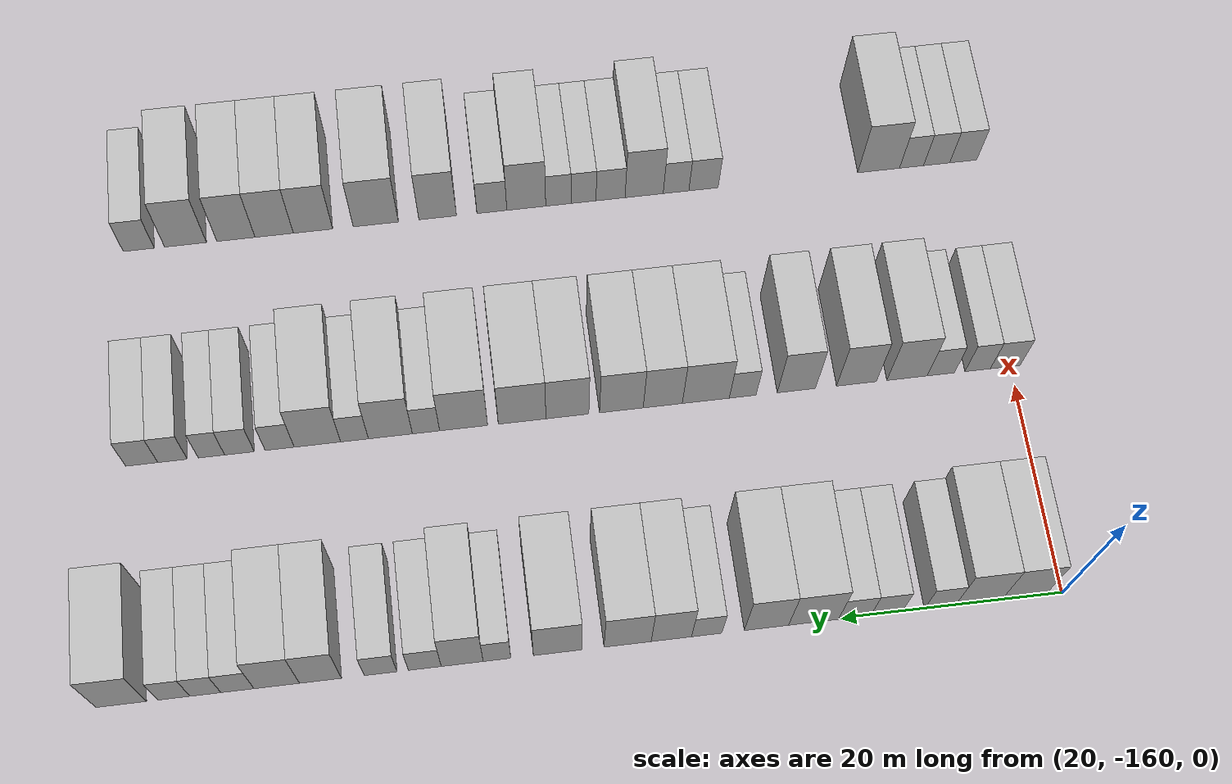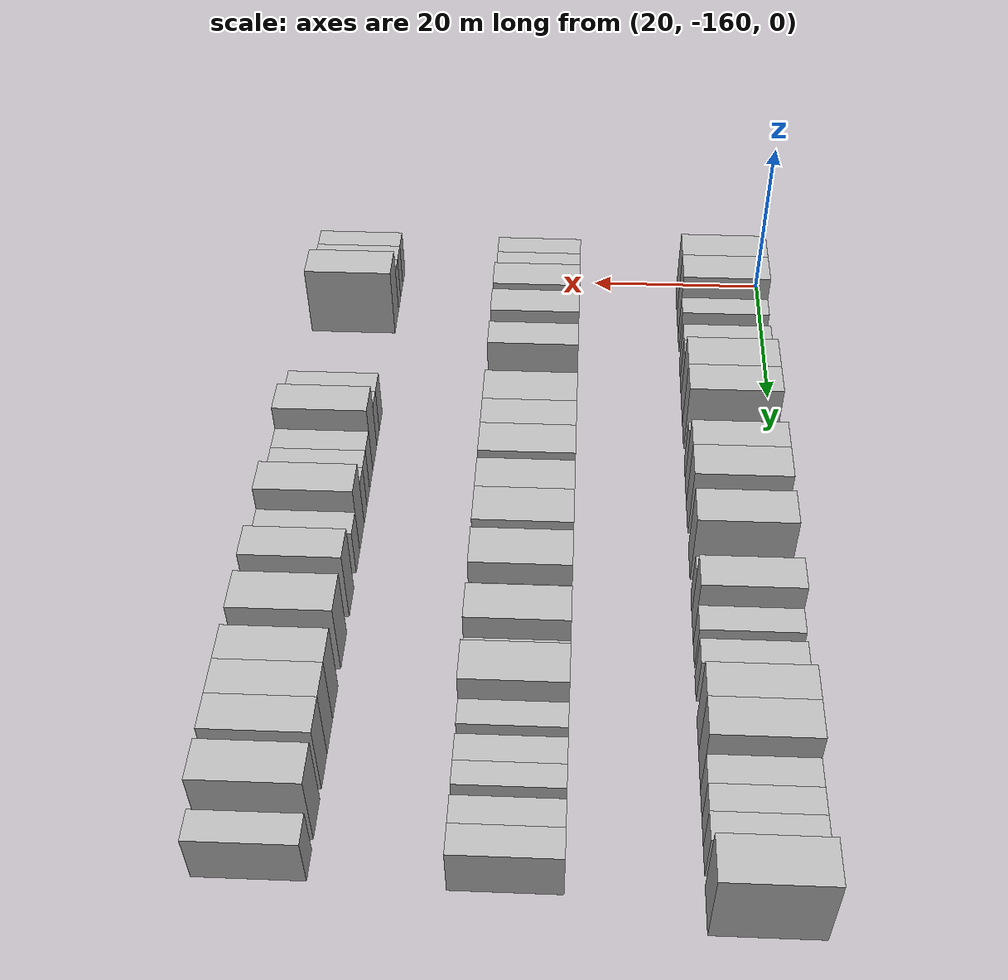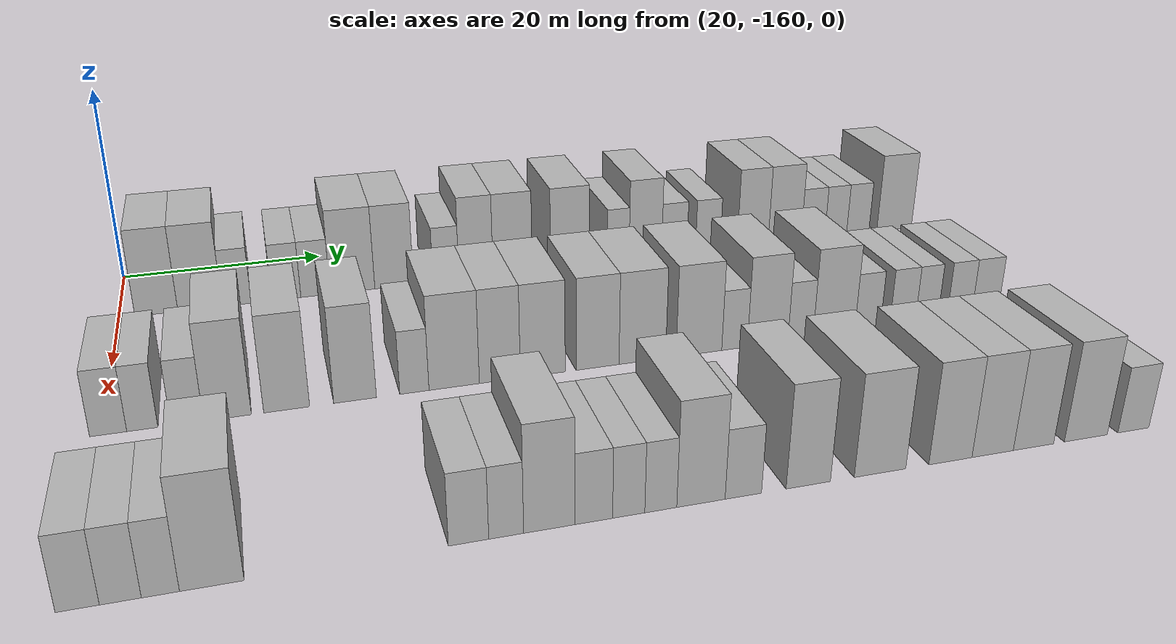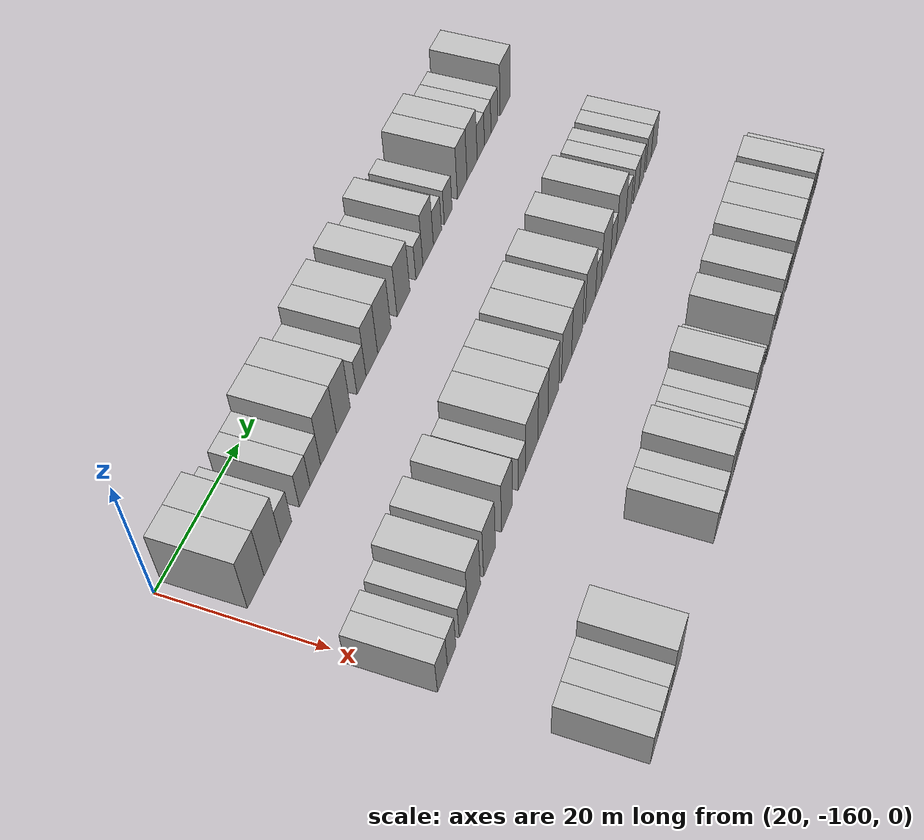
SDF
<sdf version="1.6">
 <world name="default">
  <model name="building_18">
   <static>1</static>
   <pose>25.0000 -156.4825 0 0.000000 0.000000 0.000000</pose>
   <link name="link">
    <pose>0 0 4.50 0 0 0</pose>
    <collision name="collision"><geometry><box><size>10.0000 4.0112 9.0000</size></box></geometry></collision>
    <visual name="visual">
     <cast_shadows>0</cast_shadows>
     <geometry><box><size>10.0000 4.0112 9.0000</size></box></geometry>
     <material>
      <script>
       <uri>model://HANNAS_wall/materials/scripts</uri>
       <uri>model://HANNAS_wall/materials/textures</uri>
       <name>vrc/HANNAS_wall</name>
      </script>
     </material>
    </visual>
   </link>
  </model>
  <model name="building_19">
   <static>1</static>
   <pose>25.0000 -152.3724 0 0.000000 0.000000 0.000000</pose>
   <link name="link">
    <pose>0 0 4.50 0 0 0</pose>
    <collision name="collision"><geometry><box><size>10.0000 4.2090 9.0000</size></box></geometry></collision>
    <visual name="visual">
     <cast_shadows>0</cast_shadows>
     <geometry><box><size>10.0000 4.2090 9.0000</size></box></geometry>
     <material>
      <script>
       <uri>model://HANNAS_wall/materials/scripts</uri>
       <uri>model://HANNAS_wall/materials/textures</uri>
       <name>vrc/HANNAS_wall</name>
      </script>
     </material>
    </visual>
   </link>
  </model>
  <model name="building_20">
   <static>1</static>
   <pose>25.0000 -148.8655 0 0.000000 0.000000 0.000000</pose>
   <link name="link">
    <pose>0 0 3.00 0 0 0</pose>
    <collision name="collision"><geometry><box><size>10.0000 2.8047 6.0000</size></box></geometry></collision>
    <visual name="visual">
     <cast_shadows>0</cast_shadows>
     <geometry><box><size>10.0000 2.8047 6.0000</size></box></geometry>
     <material>
      <script>
       <uri>model://HANNAS_wall/materials/scripts</uri>
       <uri>model://HANNAS_wall/materials/textures</uri>
       <name>vrc/HANNAS_wall</name>
      </script>
     </material>
    </visual>
   </link>
  </model>
  <model name="building_21">
   <static>1</static>
   <pose>25.0000 -144.0431 0 0.000000 0.000000 0.000000</pose>
   <link name="link">
    <pose>0 0 3.00 0 0 0</pose>
    <collision name="collision"><geometry><box><size>10.0000 2.8402 6.0000</size></box></geometry></collision>
    <visual name="visual">
     <cast_shadows>0</cast_shadows>
     <geometry><box><size>10.0000 2.8402 6.0000</size></box></geometry>
     <material>
      <script>
       <uri>model://HANNAS_wall/materials/scripts</uri>
       <uri>model://HANNAS_wall/materials/textures</uri>
       <name>vrc/HANNAS_wall</name>
      </script>
     </material>
    </visual>
   </link>
  </model>
  <model name="building_22">
   <static>1</static>
   <pose>25.0000 -141.1653 0 0.000000 0.000000 0.000000</pose>
   <link name="link">
    <pose>0 0 3.00 0 0 0</pose>
    <collision name="collision"><geometry><box><size>10.0000 2.9154 6.0000</size></box></geometry></collision>
    <visual name="visual">
     <cast_shadows>0</cast_shadows>
     <geometry><box><size>10.0000 2.9154 6.0000</size></box></geometry>
     <material>
      <script>
       <uri>model://HANNAS_wall/materials/scripts</uri>
       <uri>model://HANNAS_wall/materials/textures</uri>
       <name>vrc/HANNAS_wall</name>
      </script>
     </material>
    </visual>
   </link>
  </model>
  <model name="building_23">
   <static>1</static>
   <pose>25.0000 -137.4626 0 0.000000 0.000000 0.000000</pose>
   <link name="link">
    <pose>0 0 4.50 0 0 0</pose>
    <collision name="collision"><geometry><box><size>10.0000 4.4899 9.0000</size></box></geometry></collision>
    <visual name="visual">
     <cast_shadows>0</cast_shadows>
     <geometry><box><size>10.0000 4.4899 9.0000</size></box></geometry>
     <material>
      <script>
       <uri>model://HANNAS_wall/materials/scripts</uri>
       <uri>model://HANNAS_wall/materials/textures</uri>
       <name>vrc/HANNAS_wall</name>
      </script>
     </material>
    </visual>
   </link>
  </model>
  <model name="building_24">
   <static>1</static>
   <pose>25.0000 -133.2311 0 0.000000 0.000000 0.000000</pose>
   <link name="link">
    <pose>0 0 4.50 0 0 0</pose>
    <collision name="collision"><geometry><box><size>10.0000 3.9731 9.0000</size></box></geometry></collision>
    <visual name="visual">
     <cast_shadows>0</cast_shadows>
     <geometry><box><size>10.0000 3.9731 9.0000</size></box></geometry>
     <material>
      <script>
       <uri>model://HANNAS_wall/materials/scripts</uri>
       <uri>model://HANNAS_wall/materials/textures</uri>
       <name>vrc/HANNAS_wall</name>
      </script>
     </material>
    </visual>
   </link>
  </model>
  <model name="building_25">
   <static>1</static>
   <pose>25.0000 -127.8834 0 0.000000 0.000000 0.000000</pose>
   <link name="link">
    <pose>0 0 3.00 0 0 0</pose>
    <collision name="collision"><geometry><box><size>10.0000 2.7222 6.0000</size></box></geometry></collision>
    <visual name="visual">
     <cast_shadows>0</cast_shadows>
     <geometry><box><size>10.0000 2.7222 6.0000</size></box></geometry>
     <material>
      <script>
       <uri>model://HANNAS_wall/materials/scripts</uri>
       <uri>model://HANNAS_wall/materials/textures</uri>
       <name>vrc/HANNAS_wall</name>
      </script>
     </material>
    </visual>
   </link>
  </model>
  <model name="building_26">
   <static>1</static>
   <pose>25.0000 -124.7177 0 0.000000 0.000000 0.000000</pose>
   <link name="link">
    <pose>0 0 4.50 0 0 0</pose>
    <collision name="collision"><geometry><box><size>10.0000 3.6093 9.0000</size></box></geometry></collision>
    <visual name="visual">
     <cast_shadows>0</cast_shadows>
     <geometry><box><size>10.0000 3.6093 9.0000</size></box></geometry>
     <material>
      <script>
       <uri>model://HANNAS_wall/materials/scripts</uri>
       <uri>model://HANNAS_wall/materials/textures</uri>
       <name>vrc/HANNAS_wall</name>
      </script>
     </material>
    </visual>
   </link>
  </model>
  <model name="building_27">
   <static>1</static>
   <pose>25.0000 -120.8122 0 0.000000 0.000000 0.000000</pose>
   <link name="link">
    <pose>0 0 4.50 0 0 0</pose>
    <collision name="collision"><geometry><box><size>10.0000 4.2016 9.0000</size></box></geometry></collision>
    <visual name="visual">
     <cast_shadows>0</cast_shadows>
     <geometry><box><size>10.0000 4.2016 9.0000</size></box></geometry>
     <material>
      <script>
       <uri>model://HANNAS_wall/materials/scripts</uri>
       <uri>model://HANNAS_wall/materials/textures</uri>
       <name>vrc/HANNAS_wall</name>
      </script>
     </material>
    </visual>
   </link>
  </model>
  <model name="building_28">
   <static>1</static>
   <pose>25.0000 -114.5710 0 0.000000 0.000000 0.000000</pose>
   <link name="link">
    <pose>0 0 4.50 0 0 0</pose>
    <collision name="collision"><geometry><box><size>10.0000 4.2808 9.0000</size></box></geometry></collision>
    <visual name="visual">
     <cast_shadows>0</cast_shadows>
     <geometry><box><size>10.0000 4.2808 9.0000</size></box></geometry>
     <material>
      <script>
       <uri>model://HANNAS_wall/materials/scripts</uri>
       <uri>model://HANNAS_wall/materials/textures</uri>
       <name>vrc/HANNAS_wall</name>
      </script>
     </material>
    </visual>
   </link>
  </model>
  <model name="building_29">
   <static>1</static>
   <pose>25.0000 -109.2100 0 0.000000 0.000000 0.000000</pose>
   <link name="link">
    <pose>0 0 3.00 0 0 0</pose>
    <collision name="collision"><geometry><box><size>10.0000 2.4412 6.0000</size></box></geometry></collision>
    <visual name="visual">
     <cast_shadows>0</cast_shadows>
     <geometry><box><size>10.0000 2.4412 6.0000</size></box></geometry>
     <material>
      <script>
       <uri>model://HANNAS_wall/materials/scripts</uri>
       <uri>model://HANNAS_wall/materials/textures</uri>
       <name>vrc/HANNAS_wall</name>
      </script>
     </material>
    </visual>
   </link>
  </model>
  <model name="building_30">
   <static>1</static>
   <pose>25.0000 -106.1370 0 0.000000 0.000000 0.000000</pose>
   <link name="link">
    <pose>0 0 4.50 0 0 0</pose>
    <collision name="collision"><geometry><box><size>10.0000 3.7049 9.0000</size></box></geometry></collision>
    <visual name="visual">
     <cast_shadows>0</cast_shadows>
     <geometry><box><size>10.0000 3.7049 9.0000</size></box></geometry>
     <material>
      <script>
       <uri>model://HANNAS_wall/materials/scripts</uri>
       <uri>model://HANNAS_wall/materials/textures</uri>
       <name>vrc/HANNAS_wall</name>
      </script>
     </material>
    </visual>
   </link>
  </model>
  <model name="building_31">
   <static>1</static>
   <pose>25.0000 -102.8330 0 0.000000 0.000000 0.000000</pose>
   <link name="link">
    <pose>0 0 3.00 0 0 0</pose>
    <collision name="collision"><geometry><box><size>10.0000 2.9032 6.0000</size></box></geometry></collision>
    <visual name="visual">
     <cast_shadows>0</cast_shadows>
     <geometry><box><size>10.0000 2.9032 6.0000</size></box></geometry>
     <material>
      <script>
       <uri>model://HANNAS_wall/materials/scripts</uri>
       <uri>model://HANNAS_wall/materials/textures</uri>
       <name>vrc/HANNAS_wall</name>
      </script>
     </material>
    </visual>
   </link>
  </model>
  <model name="building_32">
   <static>1</static>
   <pose>25.0000 -98.9385 0 0.000000 0.000000 0.000000</pose>
   <link name="link">
    <pose>0 0 3.00 0 0 0</pose>
    <collision name="collision"><geometry><box><size>10.0000 2.8858 6.0000</size></box></geometry></collision>
    <visual name="visual">
     <cast_shadows>0</cast_shadows>
     <geometry><box><size>10.0000 2.8858 6.0000</size></box></geometry>
     <material>
      <script>
       <uri>model://HANNAS_wall/materials/scripts</uri>
       <uri>model://HANNAS_wall/materials/textures</uri>
       <name>vrc/HANNAS_wall</name>
      </script>
     </material>
    </visual>
   </link>
  </model>
  <model name="building_33">
   <static>1</static>
   <pose>25.0000 -93.6517 0 0.000000 0.000000 0.000000</pose>
   <link name="link">
    <pose>0 0 4.50 0 0 0</pose>
    <collision name="collision"><geometry><box><size>10.0000 3.6877 9.0000</size></box></geometry></collision>
    <visual name="visual">
     <cast_shadows>0</cast_shadows>
     <geometry><box><size>10.0000 3.6877 9.0000</size></box></geometry>
     <material>
      <script>
       <uri>model://HANNAS_wall/materials/scripts</uri>
       <uri>model://HANNAS_wall/materials/textures</uri>
       <name>vrc/HANNAS_wall</name>
      </script>
     </material>
    </visual>
   </link>
  </model>
  <model name="building_34">
   <static>1</static>
   <pose>25.0000 -89.8143 0 0.000000 0.000000 0.000000</pose>
   <link name="link">
    <pose>0 0 4.50 0 0 0</pose>
    <collision name="collision"><geometry><box><size>10.0000 3.9870 9.0000</size></box></geometry></collision>
    <visual name="visual">
     <cast_shadows>0</cast_shadows>
     <geometry><box><size>10.0000 3.9870 9.0000</size></box></geometry>
     <material>
      <script>
       <uri>model://HANNAS_wall/materials/scripts</uri>
       <uri>model://HANNAS_wall/materials/textures</uri>
       <name>vrc/HANNAS_wall</name>
      </script>
     </material>
    </visual>
   </link>
  </model>
  <model name="building_35">
   <static>1</static>
   <pose>25.0000 -86.3713 0 0.000000 0.000000 0.000000</pose>
   <link name="link">
    <pose>0 0 3.00 0 0 0</pose>
    <collision name="collision"><geometry><box><size>10.0000 2.8990 6.0000</size></box></geometry></collision>
    <visual name="visual">
     <cast_shadows>0</cast_shadows>
     <geometry><box><size>10.0000 2.8990 6.0000</size></box></geometry>
     <material>
      <script>
       <uri>model://HANNAS_wall/materials/scripts</uri>
       <uri>model://HANNAS_wall/materials/textures</uri>
       <name>vrc/HANNAS_wall</name>
      </script>
     </material>
    </visual>
   </link>
  </model>
  <model name="building_36">
   <static>1</static>
   <pose>25.0000 -83.5742 0 0.000000 0.000000 0.000000</pose>
   <link name="link">
    <pose>0 0 3.00 0 0 0</pose>
    <collision name="collision"><geometry><box><size>10.0000 2.6952 6.0000</size></box></geometry></collision>
    <visual name="visual">
     <cast_shadows>0</cast_shadows>
     <geometry><box><size>10.0000 2.6952 6.0000</size></box></geometry>
     <material>
      <script>
       <uri>model://HANNAS_wall/materials/scripts</uri>
       <uri>model://HANNAS_wall/materials/textures</uri>
       <name>vrc/HANNAS_wall</name>
      </script>
     </material>
    </visual>
   </link>
  </model>
  <model name="building_37">
   <static>1</static>
   <pose>25.0000 -80.8353 0 0.000000 0.000000 0.000000</pose>
   <link name="link">
    <pose>0 0 3.00 0 0 0</pose>
    <collision name="collision"><geometry><box><size>10.0000 2.7825 6.0000</size></box></geometry></collision>
    <visual name="visual">
     <cast_shadows>0</cast_shadows>
     <geometry><box><size>10.0000 2.7825 6.0000</size></box></geometry>
     <material>
      <script>
       <uri>model://HANNAS_wall/materials/scripts</uri>
       <uri>model://HANNAS_wall/materials/textures</uri>
       <name>vrc/HANNAS_wall</name>
      </script>
     </material>
    </visual>
   </link>
  </model>
  <model name="building_38">
   <static>1</static>
   <pose>25.0000 -76.2479 0 0.000000 0.000000 0.000000</pose>
   <link name="link">
    <pose>0 0 4.50 0 0 0</pose>
    <collision name="collision"><geometry><box><size>10.0000 4.3922 9.0000</size></box></geometry></collision>
    <visual name="visual">
     <cast_shadows>0</cast_shadows>
     <geometry><box><size>10.0000 4.3922 9.0000</size></box></geometry>
     <material>
      <script>
       <uri>model://HANNAS_wall/materials/scripts</uri>
       <uri>model://HANNAS_wall/materials/textures</uri>
       <name>vrc/HANNAS_wall</name>
      </script>
     </material>
    </visual>
   </link>
  </model>
  <model name="building_144">
   <static>1</static>
   <pose>47.0000 -159.5374 0 0.000000 0.000000 0.000000</pose>
   <link name="link">
    <pose>0 0 3.00 0 0 0</pose>
    <collision name="collision"><geometry><box><size>10.0000 2.8559 6.0000</size></box></geometry></collision>
    <visual name="visual">
     <cast_shadows>0</cast_shadows>
     <geometry><box><size>10.0000 2.8559 6.0000</size></box></geometry>
     <material>
      <script>
       <uri>model://HANNAS_wall/materials/scripts</uri>
       <uri>model://HANNAS_wall/materials/textures</uri>
       <name>vrc/HANNAS_wall</name>
      </script>
     </material>
    </visual>
   </link>
  </model>
  <model name="building_145">
   <static>1</static>
   <pose>47.0000 -156.8968 0 0.000000 0.000000 0.000000</pose>
   <link name="link">
    <pose>0 0 3.00 0 0 0</pose>
    <collision name="collision"><geometry><box><size>10.0000 2.4253 6.0000</size></box></geometry></collision>
    <visual name="visual">
     <cast_shadows>0</cast_shadows>
     <geometry><box><size>10.0000 2.4253 6.0000</size></box></geometry>
     <material>
      <script>
       <uri>model://HANNAS_wall/materials/scripts</uri>
       <uri>model://HANNAS_wall/materials/textures</uri>
       <name>vrc/HANNAS_wall</name>
      </script>
     </material>
    </visual>
   </link>
  </model>
  <model name="building_146">
   <static>1</static>
   <pose>47.0000 -153.3879 0 0.000000 0.000000 0.000000</pose>
   <link name="link">
    <pose>0 0 3.00 0 0 0</pose>
    <collision name="collision"><geometry><box><size>10.0000 2.5924 6.0000</size></box></geometry></collision>
    <visual name="visual">
     <cast_shadows>0</cast_shadows>
     <geometry><box><size>10.0000 2.5924 6.0000</size></box></geometry>
     <material>
      <script>
       <uri>model://HANNAS_wall/materials/scripts</uri>
       <uri>model://HANNAS_wall/materials/textures</uri>
       <name>vrc/HANNAS_wall</name>
      </script>
     </material>
    </visual>
   </link>
  </model>
  <model name="building_147">
   <static>1</static>
   <pose>47.0000 -150.1655 0 0.000000 0.000000 0.000000</pose>
   <link name="link">
    <pose>0 0 4.50 0 0 0</pose>
    <collision name="collision"><geometry><box><size>10.0000 3.8525 9.0000</size></box></geometry></collision>
    <visual name="visual">
     <cast_shadows>0</cast_shadows>
     <geometry><box><size>10.0000 3.8525 9.0000</size></box></geometry>
     <material>
      <script>
       <uri>model://HANNAS_wall/materials/scripts</uri>
       <uri>model://HANNAS_wall/materials/textures</uri>
       <name>vrc/HANNAS_wall</name>
      </script>
     </material>
    </visual>
   </link>
  </model>
  <model name="building_148">
   <static>1</static>
   <pose>47.0000 -145.3479 0 0.000000 0.000000 0.000000</pose>
   <link name="link">
    <pose>0 0 4.50 0 0 0</pose>
    <collision name="collision"><geometry><box><size>10.0000 3.7826 9.0000</size></box></geometry></collision>
    <visual name="visual">
     <cast_shadows>0</cast_shadows>
     <geometry><box><size>10.0000 3.7826 9.0000</size></box></geometry>
     <material>
      <script>
       <uri>model://HANNAS_wall/materials/scripts</uri>
       <uri>model://HANNAS_wall/materials/textures</uri>
       <name>vrc/HANNAS_wall</name>
      </script>
     </material>
    </visual>
   </link>
  </model>
  <model name="building_149">
   <static>1</static>
   <pose>47.0000 -139.6475 0 0.000000 0.000000 0.000000</pose>
   <link name="link">
    <pose>0 0 4.50 0 0 0</pose>
    <collision name="collision"><geometry><box><size>10.0000 3.6181 9.0000</size></box></geometry></collision>
    <visual name="visual">
     <cast_shadows>0</cast_shadows>
     <geometry><box><size>10.0000 3.6181 9.0000</size></box></geometry>
     <material>
      <script>
       <uri>model://HANNAS_wall/materials/scripts</uri>
       <uri>model://HANNAS_wall/materials/textures</uri>
       <name>vrc/HANNAS_wall</name>
      </script>
     </material>
    </visual>
   </link>
  </model>
  <model name="building_150">
   <static>1</static>
   <pose>47.0000 -134.5729 0 0.000000 0.000000 0.000000</pose>
   <link name="link">
    <pose>0 0 3.00 0 0 0</pose>
    <collision name="collision"><geometry><box><size>10.0000 2.5311 6.0000</size></box></geometry></collision>
    <visual name="visual">
     <cast_shadows>0</cast_shadows>
     <geometry><box><size>10.0000 2.5311 6.0000</size></box></geometry>
     <material>
      <script>
       <uri>model://HANNAS_wall/materials/scripts</uri>
       <uri>model://HANNAS_wall/materials/textures</uri>
       <name>vrc/HANNAS_wall</name>
      </script>
     </material>
    </visual>
   </link>
  </model>
  <model name="building_151">
   <static>1</static>
   <pose>47.0000 -131.0908 0 0.000000 0.000000 0.000000</pose>
   <link name="link">
    <pose>0 0 4.50 0 0 0</pose>
    <collision name="collision"><geometry><box><size>10.0000 4.4332 9.0000</size></box></geometry></collision>
    <visual name="visual">
     <cast_shadows>0</cast_shadows>
     <geometry><box><size>10.0000 4.4332 9.0000</size></box></geometry>
     <material>
      <script>
       <uri>model://HANNAS_wall/materials/scripts</uri>
       <uri>model://HANNAS_wall/materials/textures</uri>
       <name>vrc/HANNAS_wall</name>
      </script>
     </material>
    </visual>
   </link>
  </model>
  <model name="building_152">
   <static>1</static>
   <pose>47.0000 -127.0386 0 0.000000 0.000000 0.000000</pose>
   <link name="link">
    <pose>0 0 4.50 0 0 0</pose>
    <collision name="collision"><geometry><box><size>10.0000 3.6711 9.0000</size></box></geometry></collision>
    <visual name="visual">
     <cast_shadows>0</cast_shadows>
     <geometry><box><size>10.0000 3.6711 9.0000</size></box></geometry>
     <material>
      <script>
       <uri>model://HANNAS_wall/materials/scripts</uri>
       <uri>model://HANNAS_wall/materials/textures</uri>
       <name>vrc/HANNAS_wall</name>
      </script>
     </material>
    </visual>
   </link>
  </model>
  <model name="building_153">
   <static>1</static>
   <pose>47.0000 -123.1523 0 0.000000 0.000000 0.000000</pose>
   <link name="link">
    <pose>0 0 4.50 0 0 0</pose>
    <collision name="collision"><geometry><box><size>10.0000 4.1014 9.0000</size></box></geometry></collision>
    <visual name="visual">
     <cast_shadows>0</cast_shadows>
     <geometry><box><size>10.0000 4.1014 9.0000</size></box></geometry>
     <material>
      <script>
       <uri>model://HANNAS_wall/materials/scripts</uri>
       <uri>model://HANNAS_wall/materials/textures</uri>
       <name>vrc/HANNAS_wall</name>
      </script>
     </material>
    </visual>
   </link>
  </model>
  <model name="building_154">
   <static>1</static>
   <pose>47.0000 -118.0938 0 0.000000 0.000000 0.000000</pose>
   <link name="link">
    <pose>0 0 4.50 0 0 0</pose>
    <collision name="collision"><geometry><box><size>10.0000 4.0157 9.0000</size></box></geometry></collision>
    <visual name="visual">
     <cast_shadows>0</cast_shadows>
     <geometry><box><size>10.0000 4.0157 9.0000</size></box></geometry>
     <material>
      <script>
       <uri>model://HANNAS_wall/materials/scripts</uri>
       <uri>model://HANNAS_wall/materials/textures</uri>
       <name>vrc/HANNAS_wall</name>
      </script>
     </material>
    </visual>
   </link>
  </model>
  <model name="building_155">
   <static>1</static>
   <pose>47.0000 -113.8645 0 0.000000 0.000000 0.000000</pose>
   <link name="link">
    <pose>0 0 4.50 0 0 0</pose>
    <collision name="collision"><geometry><box><size>10.0000 4.4428 9.0000</size></box></geometry></collision>
    <visual name="visual">
     <cast_shadows>0</cast_shadows>
     <geometry><box><size>10.0000 4.4428 9.0000</size></box></geometry>
     <material>
      <script>
       <uri>model://HANNAS_wall/materials/scripts</uri>
       <uri>model://HANNAS_wall/materials/textures</uri>
       <name>vrc/HANNAS_wall</name>
      </script>
     </material>
    </visual>
   </link>
  </model>
  <model name="building_156">
   <static>1</static>
   <pose>47.0000 -108.4131 0 0.000000 0.000000 0.000000</pose>
   <link name="link">
    <pose>0 0 4.50 0 0 0</pose>
    <collision name="collision"><geometry><box><size>10.0000 4.4601 9.0000</size></box></geometry></collision>
    <visual name="visual">
     <cast_shadows>0</cast_shadows>
     <geometry><box><size>10.0000 4.4601 9.0000</size></box></geometry>
     <material>
      <script>
       <uri>model://HANNAS_wall/materials/scripts</uri>
       <uri>model://HANNAS_wall/materials/textures</uri>
       <name>vrc/HANNAS_wall</name>
      </script>
     </material>
    </visual>
   </link>
  </model>
  <model name="building_157">
   <static>1</static>
   <pose>47.0000 -104.9155 0 0.000000 0.000000 0.000000</pose>
   <link name="link">
    <pose>0 0 3.00 0 0 0</pose>
    <collision name="collision"><geometry><box><size>10.0000 2.5350 6.0000</size></box></geometry></collision>
    <visual name="visual">
     <cast_shadows>0</cast_shadows>
     <geometry><box><size>10.0000 2.5350 6.0000</size></box></geometry>
     <material>
      <script>
       <uri>model://HANNAS_wall/materials/scripts</uri>
       <uri>model://HANNAS_wall/materials/textures</uri>
       <name>vrc/HANNAS_wall</name>
      </script>
     </material>
    </visual>
   </link>
  </model>
  <model name="building_158">
   <static>1</static>
   <pose>47.0000 -101.6109 0 0.000000 0.000000 0.000000</pose>
   <link name="link">
    <pose>0 0 4.50 0 0 0</pose>
    <collision name="collision"><geometry><box><size>10.0000 4.0743 9.0000</size></box></geometry></collision>
    <visual name="visual">
     <cast_shadows>0</cast_shadows>
     <geometry><box><size>10.0000 4.0743 9.0000</size></box></geometry>
     <material>
      <script>
       <uri>model://HANNAS_wall/materials/scripts</uri>
       <uri>model://HANNAS_wall/materials/textures</uri>
       <name>vrc/HANNAS_wall</name>
      </script>
     </material>
    </visual>
   </link>
  </model>
  <model name="building_159">
   <static>1</static>
   <pose>47.0000 -98.2929 0 0.000000 0.000000 0.000000</pose>
   <link name="link">
    <pose>0 0 3.00 0 0 0</pose>
    <collision name="collision"><geometry><box><size>10.0000 2.5618 6.0000</size></box></geometry></collision>
    <visual name="visual">
     <cast_shadows>0</cast_shadows>
     <geometry><box><size>10.0000 2.5618 6.0000</size></box></geometry>
     <material>
      <script>
       <uri>model://HANNAS_wall/materials/scripts</uri>
       <uri>model://HANNAS_wall/materials/textures</uri>
       <name>vrc/HANNAS_wall</name>
      </script>
     </material>
    </visual>
   </link>
  </model>
  <model name="building_160">
   <static>1</static>
   <pose>47.0000 -94.8583 0 0.000000 0.000000 0.000000</pose>
   <link name="link">
    <pose>0 0 4.50 0 0 0</pose>
    <collision name="collision"><geometry><box><size>10.0000 4.3073 9.0000</size></box></geometry></collision>
    <visual name="visual">
     <cast_shadows>0</cast_shadows>
     <geometry><box><size>10.0000 4.3073 9.0000</size></box></geometry>
     <material>
      <script>
       <uri>model://HANNAS_wall/materials/scripts</uri>
       <uri>model://HANNAS_wall/materials/textures</uri>
       <name>vrc/HANNAS_wall</name>
      </script>
     </material>
    </visual>
   </link>
  </model>
  <model name="building_161">
   <static>1</static>
   <pose>47.0000 -91.3644 0 0.000000 0.000000 0.000000</pose>
   <link name="link">
    <pose>0 0 3.00 0 0 0</pose>
    <collision name="collision"><geometry><box><size>10.0000 2.6806 6.0000</size></box></geometry></collision>
    <visual name="visual">
     <cast_shadows>0</cast_shadows>
     <geometry><box><size>10.0000 2.6806 6.0000</size></box></geometry>
     <material>
      <script>
       <uri>model://HANNAS_wall/materials/scripts</uri>
       <uri>model://HANNAS_wall/materials/textures</uri>
       <name>vrc/HANNAS_wall</name>
      </script>
     </material>
    </visual>
   </link>
  </model>
  <model name="building_162">
   <static>1</static>
   <pose>47.0000 -87.6611 0 0.000000 0.000000 0.000000</pose>
   <link name="link">
    <pose>0 0 3.00 0 0 0</pose>
    <collision name="collision"><geometry><box><size>10.0000 2.7259 6.0000</size></box></geometry></collision>
    <visual name="visual">
     <cast_shadows>0</cast_shadows>
     <geometry><box><size>10.0000 2.7259 6.0000</size></box></geometry>
     <material>
      <script>
       <uri>model://HANNAS_wall/materials/scripts</uri>
       <uri>model://HANNAS_wall/materials/textures</uri>
       <name>vrc/HANNAS_wall</name>
      </script>
     </material>
    </visual>
   </link>
  </model>
  <model name="building_163">
   <static>1</static>
   <pose>47.0000 -85.0856 0 0.000000 0.000000 0.000000</pose>
   <link name="link">
    <pose>0 0 3.00 0 0 0</pose>
    <collision name="collision"><geometry><box><size>10.0000 2.4250 6.0000</size></box></geometry></collision>
    <visual name="visual">
     <cast_shadows>0</cast_shadows>
     <geometry><box><size>10.0000 2.4250 6.0000</size></box></geometry>
     <material>
      <script>
       <uri>model://HANNAS_wall/materials/scripts</uri>
       <uri>model://HANNAS_wall/materials/textures</uri>
       <name>vrc/HANNAS_wall</name>
      </script>
     </material>
    </visual>
   </link>
  </model>
  <model name="building_164">
   <static>1</static>
   <pose>47.0000 -81.5179 0 0.000000 0.000000 0.000000</pose>
   <link name="link">
    <pose>0 0 3.00 0 0 0</pose>
    <collision name="collision"><geometry><box><size>10.0000 2.7104 6.0000</size></box></geometry></collision>
    <visual name="visual">
     <cast_shadows>0</cast_shadows>
     <geometry><box><size>10.0000 2.7104 6.0000</size></box></geometry>
     <material>
      <script>
       <uri>model://HANNAS_wall/materials/scripts</uri>
       <uri>model://HANNAS_wall/materials/textures</uri>
       <name>vrc/HANNAS_wall</name>
      </script>
     </material>
    </visual>
   </link>
  </model>
  <model name="building_165">
   <static>1</static>
   <pose>47.0000 -78.6902 0 0.000000 0.000000 0.000000</pose>
   <link name="link">
    <pose>0 0 3.00 0 0 0</pose>
    <collision name="collision"><geometry><box><size>10.0000 2.9450 6.0000</size></box></geometry></collision>
    <visual name="visual">
     <cast_shadows>0</cast_shadows>
     <geometry><box><size>10.0000 2.9450 6.0000</size></box></geometry>
     <material>
      <script>
       <uri>model://HANNAS_wall/materials/scripts</uri>
       <uri>model://HANNAS_wall/materials/textures</uri>
       <name>vrc/HANNAS_wall</name>
      </script>
     </material>
    </visual>
   </link>
  </model>
  <model name="building_280">
   <static>1</static>
   <pose>69.0000 -160.0445 0 0.000000 0.000000 0.000000</pose>
   <link name="link">
    <pose>0 0 3.00 0 0 0</pose>
    <collision name="collision"><geometry><box><size>10.0000 2.7112 6.0000</size></box></geometry></collision>
    <visual name="visual">
     <cast_shadows>0</cast_shadows>
     <geometry><box><size>10.0000 2.7112 6.0000</size></box></geometry>
     <material>
      <script>
       <uri>model://HANNAS_wall/materials/scripts</uri>
       <uri>model://HANNAS_wall/materials/textures</uri>
       <name>vrc/HANNAS_wall</name>
      </script>
     </material>
    </visual>
   </link>
  </model>
  <model name="building_281">
   <static>1</static>
   <pose>69.0000 -157.3822 0 0.000000 0.000000 0.000000</pose>
   <link name="link">
    <pose>0 0 3.00 0 0 0</pose>
    <collision name="collision"><geometry><box><size>10.0000 2.6135 6.0000</size></box></geometry></collision>
    <visual name="visual">
     <cast_shadows>0</cast_shadows>
     <geometry><box><size>10.0000 2.6135 6.0000</size></box></geometry>
     <material>
      <script>
       <uri>model://HANNAS_wall/materials/scripts</uri>
       <uri>model://HANNAS_wall/materials/textures</uri>
       <name>vrc/HANNAS_wall</name>
      </script>
     </material>
    </visual>
   </link>
  </model>
  <model name="building_282">
   <static>1</static>
   <pose>69.0000 -154.8705 0 0.000000 0.000000 0.000000</pose>
   <link name="link">
    <pose>0 0 3.00 0 0 0</pose>
    <collision name="collision"><geometry><box><size>10.0000 2.4098 6.0000</size></box></geometry></collision>
    <visual name="visual">
     <cast_shadows>0</cast_shadows>
     <geometry><box><size>10.0000 2.4098 6.0000</size></box></geometry>
     <material>
      <script>
       <uri>model://HANNAS_wall/materials/scripts</uri>
       <uri>model://HANNAS_wall/materials/textures</uri>
       <name>vrc/HANNAS_wall</name>
      </script>
     </material>
    </visual>
   </link>
  </model>
  <model name="building_283">
   <static>1</static>
   <pose>69.0000 -151.5790 0 0.000000 0.000000 0.000000</pose>
   <link name="link">
    <pose>0 0 4.50 0 0 0</pose>
    <collision name="collision"><geometry><box><size>10.0000 4.1732 9.0000</size></box></geometry></collision>
    <visual name="visual">
     <cast_shadows>0</cast_shadows>
     <geometry><box><size>10.0000 4.1732 9.0000</size></box></geometry>
     <material>
      <script>
       <uri>model://HANNAS_wall/materials/scripts</uri>
       <uri>model://HANNAS_wall/materials/textures</uri>
       <name>vrc/HANNAS_wall</name>
      </script>
     </material>
    </visual>
   </link>
  </model>
  <model name="building_284">
   <static>1</static>
   <pose>69.0000 -134.1550 0 0.000000 0.000000 0.000000</pose>
   <link name="link">
    <pose>0 0 3.00 0 0 0</pose>
    <collision name="collision"><geometry><box><size>10.0000 2.8916 6.0000</size></box></geometry></collision>
    <visual name="visual">
     <cast_shadows>0</cast_shadows>
     <geometry><box><size>10.0000 2.8916 6.0000</size></box></geometry>
     <material>
      <script>
       <uri>model://HANNAS_wall/materials/scripts</uri>
       <uri>model://HANNAS_wall/materials/textures</uri>
       <name>vrc/HANNAS_wall</name>
      </script>
     </material>
    </visual>
   </link>
  </model>
  <model name="building_285">
   <static>1</static>
   <pose>69.0000 -131.4408 0 0.000000 0.000000 0.000000</pose>
   <link name="link">
    <pose>0 0 3.00 0 0 0</pose>
    <collision name="collision"><geometry><box><size>10.0000 2.5369 6.0000</size></box></geometry></collision>
    <visual name="visual">
     <cast_shadows>0</cast_shadows>
     <geometry><box><size>10.0000 2.5369 6.0000</size></box></geometry>
     <material>
      <script>
       <uri>model://HANNAS_wall/materials/scripts</uri>
       <uri>model://HANNAS_wall/materials/textures</uri>
       <name>vrc/HANNAS_wall</name>
      </script>
     </material>
    </visual>
   </link>
  </model>
  <model name="building_286">
   <static>1</static>
   <pose>69.0000 -128.2909 0 0.000000 0.000000 0.000000</pose>
   <link name="link">
    <pose>0 0 4.50 0 0 0</pose>
    <collision name="collision"><geometry><box><size>10.0000 3.7629 9.0000</size></box></geometry></collision>
    <visual name="visual">
     <cast_shadows>0</cast_shadows>
     <geometry><box><size>10.0000 3.7629 9.0000</size></box></geometry>
     <material>
      <script>
       <uri>model://HANNAS_wall/materials/scripts</uri>
       <uri>model://HANNAS_wall/materials/textures</uri>
       <name>vrc/HANNAS_wall</name>
      </script>
     </material>
    </visual>
   </link>
  </model>
  <model name="building_287">
   <static>1</static>
   <pose>69.0000 -124.9772 0 0.000000 0.000000 0.000000</pose>
   <link name="link">
    <pose>0 0 3.00 0 0 0</pose>
    <collision name="collision"><geometry><box><size>10.0000 2.8644 6.0000</size></box></geometry></collision>
    <visual name="visual">
     <cast_shadows>0</cast_shadows>
     <geometry><box><size>10.0000 2.8644 6.0000</size></box></geometry>
     <material>
      <script>
       <uri>model://HANNAS_wall/materials/scripts</uri>
       <uri>model://HANNAS_wall/materials/textures</uri>
       <name>vrc/HANNAS_wall</name>
      </script>
     </material>
    </visual>
   </link>
  </model>
  <model name="building_288">
   <static>1</static>
   <pose>69.0000 -122.3145 0 0.000000 0.000000 0.000000</pose>
   <link name="link">
    <pose>0 0 3.00 0 0 0</pose>
    <collision name="collision"><geometry><box><size>10.0000 2.4610 6.0000</size></box></geometry></collision>
    <visual name="visual">
     <cast_shadows>0</cast_shadows>
     <geometry><box><size>10.0000 2.4610 6.0000</size></box></geometry>
     <material>
      <script>
       <uri>model://HANNAS_wall/materials/scripts</uri>
       <uri>model://HANNAS_wall/materials/textures</uri>
       <name>vrc/HANNAS_wall</name>
      </script>
     </material>
    </visual>
   </link>
  </model>
  <model name="building_289">
   <static>1</static>
   <pose>69.0000 -119.8448 0 0.000000 0.000000 0.000000</pose>
   <link name="link">
    <pose>0 0 3.00 0 0 0</pose>
    <collision name="collision"><geometry><box><size>10.0000 2.4784 6.0000</size></box></geometry></collision>
    <visual name="visual">
     <cast_shadows>0</cast_shadows>
     <geometry><box><size>10.0000 2.4784 6.0000</size></box></geometry>
     <material>
      <script>
       <uri>model://HANNAS_wall/materials/scripts</uri>
       <uri>model://HANNAS_wall/materials/textures</uri>
       <name>vrc/HANNAS_wall</name>
      </script>
     </material>
    </visual>
   </link>
  </model>
  <model name="building_290">
   <static>1</static>
   <pose>69.0000 -116.6990 0 0.000000 0.000000 0.000000</pose>
   <link name="link">
    <pose>0 0 4.50 0 0 0</pose>
    <collision name="collision"><geometry><box><size>10.0000 3.8132 9.0000</size></box></geometry></collision>
    <visual name="visual">
     <cast_shadows>0</cast_shadows>
     <geometry><box><size>10.0000 3.8132 9.0000</size></box></geometry>
     <material>
      <script>
       <uri>model://HANNAS_wall/materials/scripts</uri>
       <uri>model://HANNAS_wall/materials/textures</uri>
       <name>vrc/HANNAS_wall</name>
      </script>
     </material>
    </visual>
   </link>
  </model>
  <model name="building_291">
   <static>1</static>
   <pose>69.0000 -113.3293 0 0.000000 0.000000 0.000000</pose>
   <link name="link">
    <pose>0 0 3.00 0 0 0</pose>
    <collision name="collision"><geometry><box><size>10.0000 2.9262 6.0000</size></box></geometry></collision>
    <visual name="visual">
     <cast_shadows>0</cast_shadows>
     <geometry><box><size>10.0000 2.9262 6.0000</size></box></geometry>
     <material>
      <script>
       <uri>model://HANNAS_wall/materials/scripts</uri>
       <uri>model://HANNAS_wall/materials/textures</uri>
       <name>vrc/HANNAS_wall</name>
      </script>
     </material>
    </visual>
   </link>
  </model>
  <model name="building_292">
   <static>1</static>
   <pose>69.0000 -108.0325 0 0.000000 0.000000 0.000000</pose>
   <link name="link">
    <pose>0 0 4.50 0 0 0</pose>
    <collision name="collision"><geometry><box><size>10.0000 3.6675 9.0000</size></box></geometry></collision>
    <visual name="visual">
     <cast_shadows>0</cast_shadows>
     <geometry><box><size>10.0000 3.6675 9.0000</size></box></geometry>
     <material>
      <script>
       <uri>model://HANNAS_wall/materials/scripts</uri>
       <uri>model://HANNAS_wall/materials/textures</uri>
       <name>vrc/HANNAS_wall</name>
      </script>
     </material>
    </visual>
   </link>
  </model>
  <model name="building_293">
   <static>1</static>
   <pose>69.0000 -102.0001 0 0.000000 0.000000 0.000000</pose>
   <link name="link">
    <pose>0 0 4.50 0 0 0</pose>
    <collision name="collision"><geometry><box><size>10.0000 4.3974 9.0000</size></box></geometry></collision>
    <visual name="visual">
     <cast_shadows>0</cast_shadows>
     <geometry><box><size>10.0000 4.3974 9.0000</size></box></geometry>
     <material>
      <script>
       <uri>model://HANNAS_wall/materials/scripts</uri>
       <uri>model://HANNAS_wall/materials/textures</uri>
       <name>vrc/HANNAS_wall</name>
      </script>
     </material>
    </visual>
   </link>
  </model>
  <model name="building_294">
   <static>1</static>
   <pose>69.0000 -95.8965 0 0.000000 0.000000 0.000000</pose>
   <link name="link">
    <pose>0 0 4.50 0 0 0</pose>
    <collision name="collision"><geometry><box><size>10.0000 3.8097 9.0000</size></box></geometry></collision>
    <visual name="visual">
     <cast_shadows>0</cast_shadows>
     <geometry><box><size>10.0000 3.8097 9.0000</size></box></geometry>
     <material>
      <script>
       <uri>model://HANNAS_wall/materials/scripts</uri>
       <uri>model://HANNAS_wall/materials/textures</uri>
       <name>vrc/HANNAS_wall</name>
      </script>
     </material>
    </visual>
   </link>
  </model>
  <model name="building_295">
   <static>1</static>
   <pose>69.0000 -92.1328 0 0.000000 0.000000 0.000000</pose>
   <link name="link">
    <pose>0 0 4.50 0 0 0</pose>
    <collision name="collision"><geometry><box><size>10.0000 3.7178 9.0000</size></box></geometry></collision>
    <visual name="visual">
     <cast_shadows>0</cast_shadows>
     <geometry><box><size>10.0000 3.7178 9.0000</size></box></geometry>
     <material>
      <script>
       <uri>model://HANNAS_wall/materials/scripts</uri>
       <uri>model://HANNAS_wall/materials/textures</uri>
       <name>vrc/HANNAS_wall</name>
      </script>
     </material>
    </visual>
   </link>
  </model>
  <model name="building_296">
   <static>1</static>
   <pose>69.0000 -88.4268 0 0.000000 0.000000 0.000000</pose>
   <link name="link">
    <pose>0 0 4.50 0 0 0</pose>
    <collision name="collision"><geometry><box><size>10.0000 3.6942 9.0000</size></box></geometry></collision>
    <visual name="visual">
     <cast_shadows>0</cast_shadows>
     <geometry><box><size>10.0000 3.6942 9.0000</size></box></geometry>
     <material>
      <script>
       <uri>model://HANNAS_wall/materials/scripts</uri>
       <uri>model://HANNAS_wall/materials/textures</uri>
       <name>vrc/HANNAS_wall</name>
      </script>
     </material>
    </visual>
   </link>
  </model>
  <model name="building_297">
   <static>1</static>
   <pose>69.0000 -83.5643 0 0.000000 0.000000 0.000000</pose>
   <link name="link">
    <pose>0 0 4.50 0 0 0</pose>
    <collision name="collision"><geometry><box><size>10.0000 4.0309 9.0000</size></box></geometry></collision>
    <visual name="visual">
     <cast_shadows>0</cast_shadows>
     <geometry><box><size>10.0000 4.0309 9.0000</size></box></geometry>
     <material>
      <script>
       <uri>model://HANNAS_wall/materials/scripts</uri>
       <uri>model://HANNAS_wall/materials/textures</uri>
       <name>vrc/HANNAS_wall</name>
      </script>
     </material>
    </visual>
   </link>
  </model>
  <model name="building_298">
   <static>1</static>
   <pose>69.0000 -79.0581 0 0.000000 0.000000 0.000000</pose>
   <link name="link">
    <pose>0 0 3.00 0 0 0</pose>
    <collision name="collision"><geometry><box><size>10.0000 2.9813 6.0000</size></box></geometry></collision>
    <visual name="visual">
     <cast_shadows>0</cast_shadows>
     <geometry><box><size>10.0000 2.9813 6.0000</size></box></geometry>
     <material>
      <script>
       <uri>model://HANNAS_wall/materials/scripts</uri>
       <uri>model://HANNAS_wall/materials/textures</uri>
       <name>vrc/HANNAS_wall</name>
      </script>
     </material>
    </visual>
   </link>
  </model>
 </world>
</sdf>
